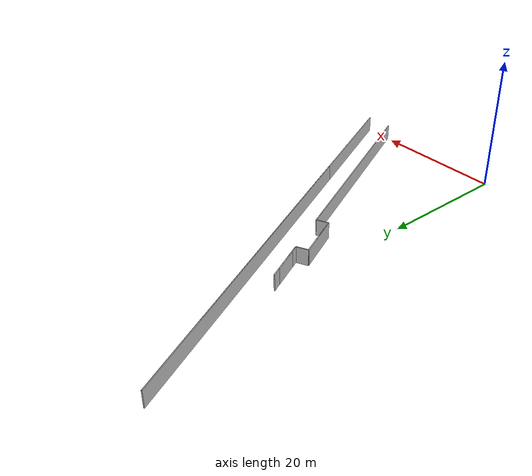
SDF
<?xml version="1.0" ?>
<sdf version="1.6">
  <model name="sps_0900">
    <pose frame="">0 0 0 0 -0 0</pose>
    <static>1</static>
    <self_collide>0</self_collide>
    <allow_auto_disable>0</allow_auto_disable>
    <link name="Wall510">
      <kinematic>0</kinematic>
      <gravity>1</gravity>
      <self_collide>0</self_collide>
      <collision name="collision">
        <geometry>
          <box>
            <size>51.1994 0.15 2.5</size>
          </box>
        </geometry>
        <pose frame="">0 0 0 0 -0 0</pose>
      </collision>
      <visual name="visual">
        <geometry>
          <box>
            <size>51.1994 0.15 2.5</size>
          </box>
        </geometry>
        <pose frame="">0 0 0 0 -0 0</pose>
        <cast_shadows>1</cast_shadows>
        <transparency>0.0</transparency>
      </visual>
      <pose frame="">5.30522 40.8681 1.25 0 0 -1.114</pose>
    </link>
    <link name="Wall511">
      <kinematic>0</kinematic>
      <gravity>1</gravity>
      <self_collide>0</self_collide>
      <collision name="collision">
        <geometry>
          <box>
            <size>19.9372 0.15 2.5</size>
          </box>
        </geometry>
        <pose frame="">0 0 0 0 -0 0</pose>
      </collision>
      <visual name="visual">
        <geometry>
          <box>
            <size>19.9372 0.15 2.5</size>
          </box>
        </geometry>
        <pose frame="">0 0 0 0 -0 0</pose>
        <cast_shadows>1</cast_shadows>
        <transparency>0.0</transparency>
      </visual>
      <pose frame="">20.9934 8.94654 1.25 0 0 -1.114</pose>
    </link>
    <link name="Wall1075">
      <kinematic>0</kinematic>
      <gravity>1</gravity>
      <self_collide>0</self_collide>
      <collision name="collision">
        <geometry>
          <box>
            <size>33.1418 0.15 2.5</size>
          </box>
        </geometry>
        <pose frame="">0 0 0 0 -0 0</pose>
      </collision>
      <visual name="visual">
        <geometry>
          <box>
            <size>33.1418 0.15 2.5</size>
          </box>
        </geometry>
        <pose frame="">0 0 0 0 -0 0</pose>
        <cast_shadows>1</cast_shadows>
        <transparency>0.0</transparency>
      </visual>
      <pose frame="">13.6248 14.872 1.25 0 -0 2.02759</pose>
    </link>
    <link name="Wall1076">
      <kinematic>0</kinematic>
      <gravity>1</gravity>
      <self_collide>0</self_collide>
      <collision name="collision">
        <geometry>
          <box>
            <size>1.79886 0.15 2.5</size>
          </box>
        </geometry>
        <pose frame="">0 0 0 0 -0 0</pose>
      </collision>
      <visual name="visual">
        <geometry>
          <box>
            <size>1.79886 0.15 2.5</size>
          </box>
        </geometry>
        <pose frame="">0 0 0 0 -0 0</pose>
        <cast_shadows>1</cast_shadows>
        <transparency>0.0</transparency>
      </visual>
      <pose frame="">5.50866 29.3472 1.25 0 0 -2.68482</pose>
    </link>
    <link name="Wall1077">
      <kinematic>0</kinematic>
      <gravity>1</gravity>
      <self_collide>0</self_collide>
      <collision name="collision">
        <geometry>
          <box>
            <size>6.99993 0.15 2.5</size>
          </box>
        </geometry>
        <pose frame="">0 0 0 0 -0 0</pose>
      </collision>
      <visual name="visual">
        <geometry>
          <box>
            <size>6.99993 0.15 2.5</size>
          </box>
        </geometry>
        <pose frame="">0 0 0 0 -0 0</pose>
        <cast_shadows>1</cast_shadows>
        <transparency>0.0</transparency>
      </visual>
      <pose frame="">3.15725 32.0914 1.25 0 -0 2.02773</pose>
    </link>
    <link name="Wall1078">
      <kinematic>0</kinematic>
      <gravity>1</gravity>
      <self_collide>0</self_collide>
      <collision name="collision">
        <geometry>
          <box>
            <size>1.79968 0.15 2.5</size>
          </box>
        </geometry>
        <pose frame="">0 0 0 0 -0 0</pose>
      </collision>
      <visual name="visual">
        <geometry>
          <box>
            <size>1.79968 0.15 2.5</size>
          </box>
        </geometry>
        <pose frame="">0 0 0 0 -0 0</pose>
        <cast_shadows>1</cast_shadows>
        <transparency>0.0</transparency>
      </visual>
      <pose frame="">2.42065 35.6292 1.25 0 -0 0.456777</pose>
    </link>
    <link name="Wall1079">
      <kinematic>0</kinematic>
      <gravity>1</gravity>
      <self_collide>0</self_collide>
      <collision name="collision">
        <geometry>
          <box>
            <size>5.19773 0.15 2.5</size>
          </box>
        </geometry>
        <pose frame="">0 0 0 0 -0 0</pose>
      </collision>
      <visual name="visual">
        <geometry>
          <box>
            <size>5.19773 0.15 2.5</size>
          </box>
        </geometry>
        <pose frame="">0 0 0 0 -0 0</pose>
        <cast_shadows>1</cast_shadows>
        <transparency>0.0</transparency>
      </visual>
      <pose frame="">2.08254 38.3588 1.25 0 -0 2.02733</pose>
    </link>
    <link name="Wall1080">
      <kinematic>0</kinematic>
      <gravity>1</gravity>
      <self_collide>0</self_collide>
      <collision name="collision">
        <geometry>
          <box>
            <size>1.38549 0.15 2.5</size>
          </box>
        </geometry>
        <pose frame="">0 0 0 0 -0 0</pose>
      </collision>
      <visual name="visual">
        <geometry>
          <box>
            <size>1.38549 0.15 2.5</size>
          </box>
        </geometry>
        <pose frame="">0 0 0 0 -0 0</pose>
        <cast_shadows>1</cast_shadows>
        <transparency>0.0</transparency>
      </visual>
      <pose frame="">0.631461 41.3133 1.25 0 -0 2.02733</pose>
    </link>
    <link name="Wall1112">
      <kinematic>0</kinematic>
      <gravity>1</gravity>
      <self_collide>0</self_collide>
      <collision name="collision">
        <geometry>
          <box>
            <size>71.1371 0.15 2.5</size>
          </box>
        </geometry>
        <pose frame="">0 0 0 0 -0 0</pose>
      </collision>
      <visual name="visual">
        <geometry>
          <box>
            <size>71.1371 0.15 2.5</size>
          </box>
        </geometry>
        <pose frame="">0 0 0 0 -0 0</pose>
        <cast_shadows>1</cast_shadows>
        <transparency>0.0</transparency>
      </visual>
      <pose frame="">9.7044 31.9218 1.25 0 0 -1.114</pose>
    </link>
    <link name="Wall7349">
      <kinematic>0</kinematic>
      <gravity>1</gravity>
      <self_collide>0</self_collide>
      <collision name="collision">
        <geometry>
          <box>
            <size>33.1419 0.15 2.5</size>
          </box>
        </geometry>
        <pose frame="">0 0 0 0 -0 0</pose>
      </collision>
      <visual name="visual">
        <geometry>
          <box>
            <size>33.1419 0.15 2.5</size>
          </box>
        </geometry>
        <pose frame="">0 0 0 0 -0 0</pose>
        <cast_shadows>1</cast_shadows>
        <transparency>0.0</transparency>
      </visual>
      <pose frame="">13.625 14.872 1.25 0 -0 2.02759</pose>
    </link>
    <link name="Wall7350">
      <kinematic>0</kinematic>
      <gravity>1</gravity>
      <self_collide>0</self_collide>
      <collision name="collision">
        <geometry>
          <box>
            <size>1.79864 0.15 2.5</size>
          </box>
        </geometry>
        <pose frame="">0 0 0 0 -0 0</pose>
      </collision>
      <visual name="visual">
        <geometry>
          <box>
            <size>1.79864 0.15 2.5</size>
          </box>
        </geometry>
        <pose frame="">0 0 0 0 -0 0</pose>
        <cast_shadows>1</cast_shadows>
        <transparency>0.0</transparency>
      </visual>
      <pose frame="">5.50896 29.3472 1.25 0 0 -2.68476</pose>
    </link>
    <link name="Wall7351">
      <kinematic>0</kinematic>
      <gravity>1</gravity>
      <self_collide>0</self_collide>
      <collision name="collision">
        <geometry>
          <box>
            <size>7.00004 0.15 2.5</size>
          </box>
        </geometry>
        <pose frame="">0 0 0 0 -0 0</pose>
      </collision>
      <visual name="visual">
        <geometry>
          <box>
            <size>7.00004 0.15 2.5</size>
          </box>
        </geometry>
        <pose frame="">0 0 0 0 -0 0</pose>
        <cast_shadows>1</cast_shadows>
        <transparency>0.0</transparency>
      </visual>
      <pose frame="">3.15755 32.0914 1.25 0 -0 2.02776</pose>
    </link>
    <link name="Wall7352">
      <kinematic>0</kinematic>
      <gravity>1</gravity>
      <self_collide>0</self_collide>
      <collision name="collision">
        <geometry>
          <box>
            <size>1.7999 0.15 2.5</size>
          </box>
        </geometry>
        <pose frame="">0 0 0 0 -0 0</pose>
      </collision>
      <visual name="visual">
        <geometry>
          <box>
            <size>1.7999 0.15 2.5</size>
          </box>
        </geometry>
        <pose frame="">0 0 0 0 -0 0</pose>
        <cast_shadows>1</cast_shadows>
        <transparency>0.0</transparency>
      </visual>
      <pose frame="">2.42095 35.6292 1.25 0 -0 0.456717</pose>
    </link>
    <link name="Wall7353">
      <kinematic>0</kinematic>
      <gravity>1</gravity>
      <self_collide>0</self_collide>
      <collision name="collision">
        <geometry>
          <box>
            <size>5.19813 0.15 2.5</size>
          </box>
        </geometry>
        <pose frame="">0 0 0 0 -0 0</pose>
      </collision>
      <visual name="visual">
        <geometry>
          <box>
            <size>5.19813 0.15 2.5</size>
          </box>
        </geometry>
        <pose frame="">0 0 0 0 -0 0</pose>
        <cast_shadows>1</cast_shadows>
        <transparency>0.0</transparency>
      </visual>
      <pose frame="">2.08215 38.3586 1.25 0 -0 2.02765</pose>
    </link>
  </model>
</sdf>
